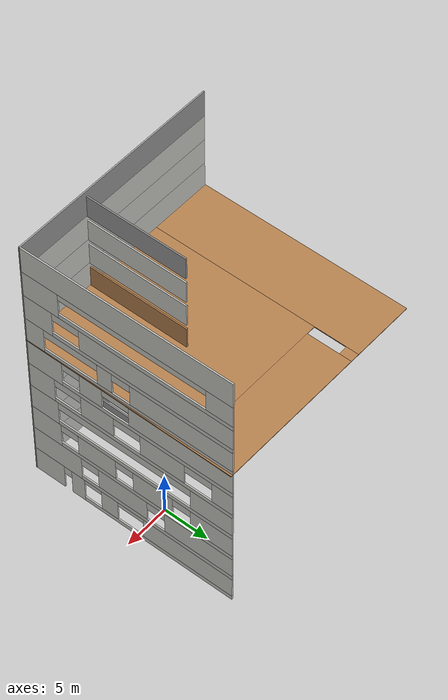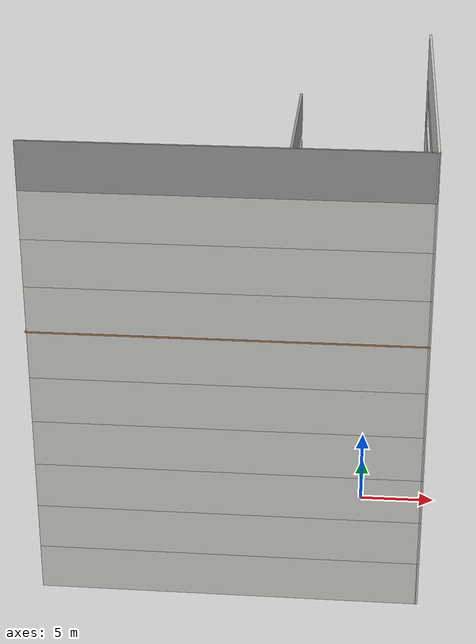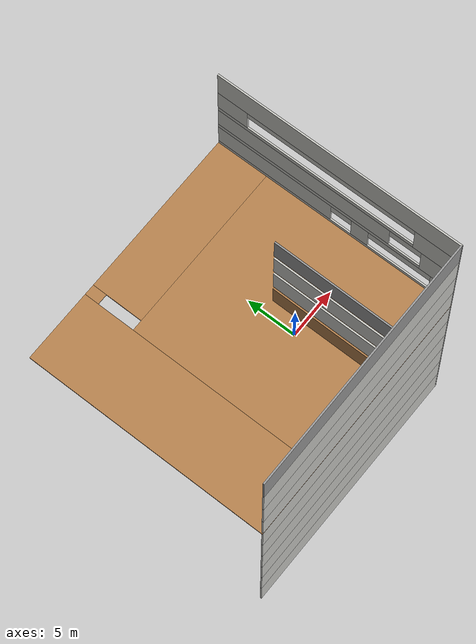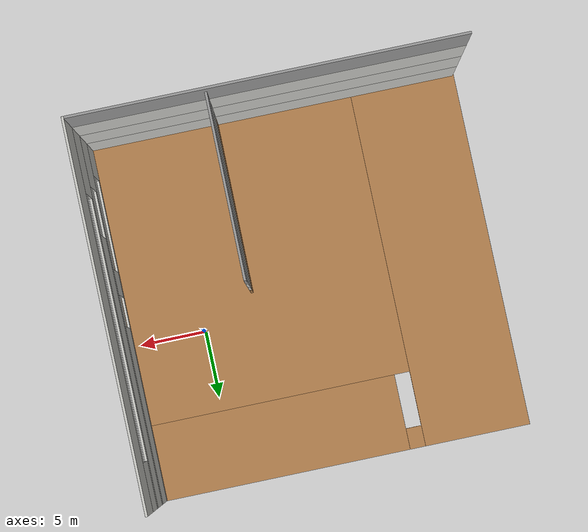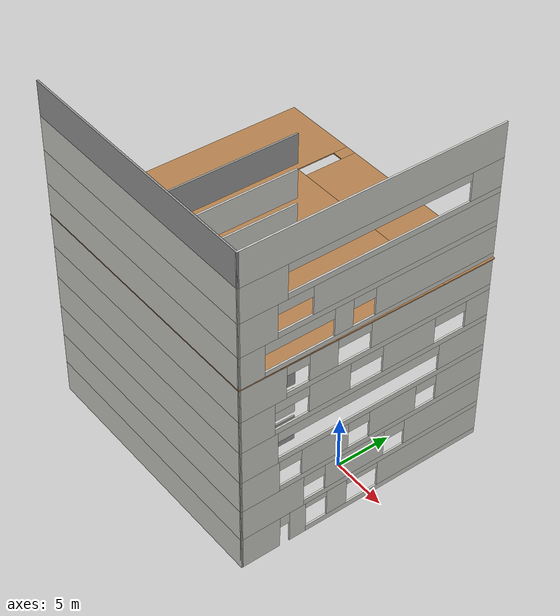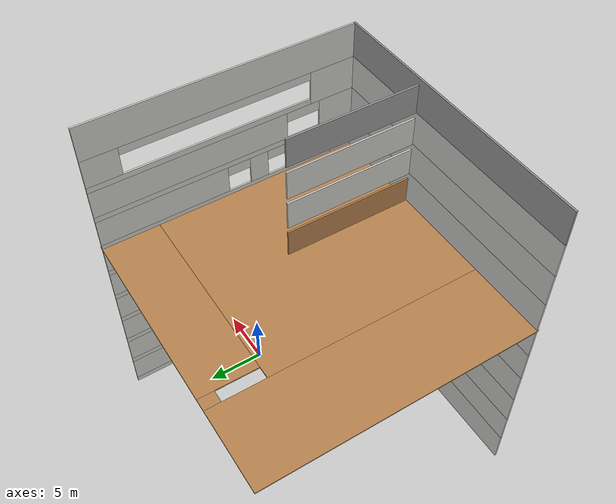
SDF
<sdf version="1.7">
 <model name="high_building">
  <pose>-8.08785 -0.655 0 0 -0 0</pose>
  <link name="Floor_9">
   <pose>0.009156 -0 18 0 -0 0</pose>
   <visual name="Floor_9_Visual_0">
    <pose>-8.52771 0 0.05 0 -0 0</pose>
    <geometry><box><size>6.77119 23.0012 0.1</size></box></geometry>
    <material>
     <script><uri>file://media/materials/scripts/gazebo.material</uri><name>Gazebo/Wood</name></script>
     <ambient>1 1 1 1</ambient>
    </material>
    <meta><layer>6</layer></meta>
   </visual>
   <collision name="Floor_9_Collision_0">
    <geometry><box><size>6.77119 23.0012 0.1</size></box></geometry>
    <pose>-8.52771 0 0.05 0 -0 0</pose>
   </collision>
   <visual name="Floor_9_Visual_1">
    <pose>3.38559 -2.41917 0.05 0 -0 0</pose>
    <geometry><box><size>17.0554 18.1629 0.1</size></box></geometry>
    <material>
     <script><uri>file://media/materials/scripts/gazebo.material</uri><name>Gazebo/Wood</name></script>
     <ambient>1 1 1 1</ambient>
    </material>
    <meta><layer>6</layer></meta>
   </visual>
   <collision name="Floor_9_Collision_1">
    <geometry><box><size>17.0554 18.1629 0.1</size></box></geometry>
    <pose>3.38559 -2.41917 0.05 0 -0 0</pose>
   </collision>
   <visual name="Floor_9_Visual_2">
    <pose>3.88559 9.08145 0.05 0 -0 0</pose>
    <geometry><box><size>16.0554 4.83833 0.1</size></box></geometry>
    <material>
     <script><uri>file://media/materials/scripts/gazebo.material</uri><name>Gazebo/Wood</name></script>
     <ambient>1 1 1 1</ambient>
    </material>
    <meta><layer>6</layer></meta>
   </visual>
   <collision name="Floor_9_Collision_2">
    <geometry><box><size>16.0554 4.83833 0.1</size></box></geometry>
    <pose>3.88559 9.08145 0.05 0 -0 0</pose>
   </collision>
   <visual name="Floor_9_Visual_3">
    <pose>-4.64212 10.8314 0.05 0 -0 0</pose>
    <geometry><box><size>1 1.33833 0.1</size></box></geometry>
    <material>
     <script><uri>file://media/materials/scripts/gazebo.material</uri><name>Gazebo/Wood</name></script>
     <ambient>1 1 1 1</ambient>
    </material>
    <meta><layer>6</layer></meta>
   </visual>
   <collision name="Floor_9_Collision_3">
    <geometry><box><size>1 1.33833 0.1</size></box></geometry>
    <pose>-4.64212 10.8314 0.05 0 -0 0</pose>
   </collision>
  </link>
  <link name="Wall_10">
   <pose>11.7533 -0 0 0 -0 1.57898</pose>
   <visual name="Wall_10_Visual_0">
    <pose>-9.72917 0 1.5 0 -0 0</pose>
    <geometry><box><size>3.54198 0.15 3</size></box></geometry>
    <material>
     <script><uri>file://media/materials/scripts/gazebo.material</uri><name>Gazebo/CeilingTiled</name></script>
     <ambient>1 1 1 1</ambient>
    </material>
    <meta><layer>0</layer></meta>
   </visual>
   <collision name="Wall_10_Collision_0">
    <geometry><box><size>3.54198 0.15 3</size></box></geometry>
    <pose>-9.72917 0 1.5 0 -0 0</pose>
   </collision>
   <visual name="Wall_10_Visual_1">
    <pose>-6.29994 0 1.5 0 -0 0</pose>
    <geometry><box><size>1.5165 0.15 3</size></box></geometry>
    <material>
     <script><uri>file://media/materials/scripts/gazebo.material</uri><name>Gazebo/CeilingTiled</name></script>
     <ambient>1 1 1 1</ambient>
    </material>
    <meta><layer>0</layer></meta>
   </visual>
   <collision name="Wall_10_Collision_1">
    <geometry><box><size>1.5165 0.15 3</size></box></geometry>
    <pose>-6.29994 0 1.5 0 -0 0</pose>
   </collision>
   <visual name="Wall_10_Visual_2">
    <pose>2.97924 0 0.25 0 -0 0</pose>
    <geometry><box><size>17.0419 0.15 0.5</size></box></geometry>
    <material>
     <script><uri>file://media/materials/scripts/gazebo.material</uri><name>Gazebo/CeilingTiled</name></script>
     <ambient>1 1 1 1</ambient>
    </material>
    <meta><layer>0</layer></meta>
   </visual>
   <collision name="Wall_10_Collision_2">
    <geometry><box><size>17.0419 0.15 0.5</size></box></geometry>
    <pose>2.97924 0 0.25 0 -0 0</pose>
   </collision>
   <visual name="Wall_10_Visual_3">
    <pose>-2.58823 0 1.75 0 -0 0</pose>
    <geometry><box><size>1.90692 0.15 2.5</size></box></geometry>
    <material>
     <script><uri>file://media/materials/scripts/gazebo.material</uri><name>Gazebo/CeilingTiled</name></script>
     <ambient>1 1 1 1</ambient>
    </material>
    <meta><layer>0</layer></meta>
   </visual>
   <collision name="Wall_10_Collision_3">
    <geometry><box><size>1.90692 0.15 2.5</size></box></geometry>
    <pose>-2.58823 0 1.75 0 -0 0</pose>
   </collision>
   <visual name="Wall_10_Visual_4">
    <pose>6.4327 0 1.75 0 -0 0</pose>
    <geometry><box><size>10.1349 0.15 2.5</size></box></geometry>
    <material>
     <script><uri>file://media/materials/scripts/gazebo.material</uri><name>Gazebo/CeilingTiled</name></script>
     <ambient>1 1 1 1</ambient>
    </material>
    <meta><layer>0</layer></meta>
   </visual>
   <collision name="Wall_10_Collision_4">
    <geometry><box><size>10.1349 0.15 2.5</size></box></geometry>
    <pose>6.4327 0 1.75 0 -0 0</pose>
   </collision>
   <visual name="Wall_10_Visual_5">
    <pose>-7.50819 0 2.5 0 -0 0</pose>
    <geometry><box><size>0.9 0.15 1</size></box></geometry>
    <material>
     <script><uri>file://media/materials/scripts/gazebo.material</uri><name>Gazebo/CeilingTiled</name></script>
     <ambient>1 1 1 1</ambient>
    </material>
    <meta><layer>0</layer></meta>
   </visual>
   <collision name="Wall_10_Collision_5">
    <geometry><box><size>0.9 0.15 1</size></box></geometry>
    <pose>-7.50819 0 2.5 0 -0 0</pose>
   </collision>
   <visual name="Wall_10_Visual_6">
    <pose>-4.54169 0 2.75 0 -0 0</pose>
    <geometry><box><size>2 0.15 0.5</size></box></geometry>
    <material>
     <script><uri>file://media/materials/scripts/gazebo.material</uri><name>Gazebo/CeilingTiled</name></script>
     <ambient>1 1 1 1</ambient>
    </material>
    <meta><layer>0</layer></meta>
   </visual>
   <collision name="Wall_10_Collision_6">
    <geometry><box><size>2 0.15 0.5</size></box></geometry>
    <pose>-4.54169 0 2.75 0 -0 0</pose>
   </collision>
   <visual name="Wall_10_Visual_7">
    <pose>-0.134768 0 2.75 0 -0 0</pose>
    <geometry><box><size>3 0.15 0.5</size></box></geometry>
    <material>
     <script><uri>file://media/materials/scripts/gazebo.material</uri><name>Gazebo/CeilingTiled</name></script>
     <ambient>1 1 1 1</ambient>
    </material>
    <meta><layer>0</layer></meta>
   </visual>
   <collision name="Wall_10_Collision_7">
    <geometry><box><size>3 0.15 0.5</size></box></geometry>
    <pose>-0.134768 0 2.75 0 -0 0</pose>
   </collision>
  </link>
  <link name="Wall_102">
   <collision name="Wall_102_Collision">
    <geometry><box><size>23.75 0.15 3</size></box></geometry>
    <pose>0 0 1.5 0 -0 0</pose>
   </collision>
   <visual name="Wall_102_Visual">
    <pose>0 0 1.5 0 -0 0</pose>
    <geometry><box><size>23.75 0.15 3</size></box></geometry>
    <material>
     <script><uri>file://media/materials/scripts/gazebo.material</uri><name>Gazebo/Grey</name></script>
     <ambient>1 1 1 1</ambient>
    </material>
    <meta><layer>9</layer></meta>
   </visual>
   <pose>0.046851 -11.425 27 0 -0 0</pose>
  </link>
  <link name="Wall_103">
   <collision name="Wall_103_Collision">
    <geometry><box><size>23.0008 0.15 3</size></box></geometry>
    <pose>0 0 1.5 0 -0 0</pose>
   </collision>
   <visual name="Wall_103_Visual">
    <pose>0 0 1.5 0 -0 0</pose>
    <geometry><box><size>23.0008 0.15 3</size></box></geometry>
    <material>
     <script><uri>file://media/materials/scripts/gazebo.material</uri><name>Gazebo/CeilingTiled</name></script>
     <ambient>1 1 1 1</ambient>
    </material>
    <meta><layer>9</layer></meta>
   </visual>
   <pose>11.7533 -0 27 0 -0 1.57898</pose>
  </link>
  <link name="Wall_106">
   <collision name="Wall_106_Collision">
    <geometry><box><size>11 0.15 2.5</size></box></geometry>
    <pose>0 0 1.25 0 -0 0</pose>
   </collision>
   <visual name="Wall_106_Visual">
    <pose>0 0 1.25 0 -0 0</pose>
    <geometry><box><size>11 0.15 2.5</size></box></geometry>
    <material>
     <script><uri>file://media/materials/scripts/gazebo.material</uri><name>Gazebo/Grey</name></script>
     <ambient>1 1 1 1</ambient>
    </material>
    <meta><layer>9</layer></meta>
   </visual>
   <pose>3.63788 -5.79491 27 0 -0 1.5708</pose>
  </link>
  <link name="Wall_14">
   <collision name="Wall_14_Collision">
    <geometry><box><size>11 0.15 2.5</size></box></geometry>
    <pose>0 0 1.25 0 -0 0</pose>
   </collision>
   <visual name="Wall_14_Visual">
    <pose>0 0 1.25 0 -0 0</pose>
    <geometry><box><size>11 0.15 2.5</size></box></geometry>
    <material>
     <script><uri>file://media/materials/scripts/gazebo.material</uri><name>Gazebo/Grey</name></script>
     <ambient>1 1 1 1</ambient>
    </material>
    <meta><layer>0</layer></meta>
   </visual>
   <pose>3.63788 -5.79491 0 0 -0 1.5708</pose>
  </link>
  <link name="Wall_18">
   <collision name="Wall_18_Collision">
    <geometry><box><size>23.75 0.15 3</size></box></geometry>
    <pose>0 0 1.5 0 -0 0</pose>
   </collision>
   <visual name="Wall_18_Visual">
    <pose>0 0 1.5 0 -0 0</pose>
    <geometry><box><size>23.75 0.15 3</size></box></geometry>
    <material>
     <script><uri>file://media/materials/scripts/gazebo.material</uri><name>Gazebo/CeilingTiled</name></script>
     <ambient>1 1 1 1</ambient>
    </material>
    <meta><layer>1</layer></meta>
   </visual>
   <pose>0.046851 -11.425 3 0 -0 0</pose>
  </link>
  <link name="Wall_19">
   <pose>11.7533 -0 3 0 -0 1.57898</pose>
   <visual name="Wall_19_Visual_0">
    <pose>-8.63673 0 1.5 0 -0 0</pose>
    <geometry><box><size>5.72731 0.15 3</size></box></geometry>
    <material>
     <script><uri>file://media/materials/scripts/gazebo.material</uri><name>Gazebo/CeilingTiled</name></script>
     <ambient>1 1 1 1</ambient>
    </material>
    <meta><layer>1</layer></meta>
   </visual>
   <collision name="Wall_19_Collision_0">
    <geometry><box><size>5.72731 0.15 3</size></box></geometry>
    <pose>-8.63673 0 1.5 0 -0 0</pose>
   </collision>
   <visual name="Wall_19_Visual_1">
    <pose>2.86365 0 0.25 0 -0 0</pose>
    <geometry><box><size>17.2735 0.15 0.5</size></box></geometry>
    <material>
     <script><uri>file://media/materials/scripts/gazebo.material</uri><name>Gazebo/CeilingTiled</name></script>
     <ambient>1 1 1 1</ambient>
    </material>
    <meta><layer>1</layer></meta>
   </visual>
   <collision name="Wall_19_Collision_1">
    <geometry><box><size>17.2735 0.15 0.5</size></box></geometry>
    <pose>2.86365 0 0.25 0 -0 0</pose>
   </collision>
   <visual name="Wall_19_Visual_2">
    <pose>-0.958433 0 1.75 0 -0 0</pose>
    <geometry><box><size>5.62929 0.15 2.5</size></box></geometry>
    <material>
     <script><uri>file://media/materials/scripts/gazebo.material</uri><name>Gazebo/CeilingTiled</name></script>
     <ambient>1 1 1 1</ambient>
    </material>
    <meta><layer>1</layer></meta>
   </visual>
   <collision name="Wall_19_Collision_2">
    <geometry><box><size>5.62929 0.15 2.5</size></box></geometry>
    <pose>-0.958433 0 1.75 0 -0 0</pose>
   </collision>
   <visual name="Wall_19_Visual_3">
    <pose>7.6783 0 1.75 0 -0 0</pose>
    <geometry><box><size>7.64417 0.15 2.5</size></box></geometry>
    <material>
     <script><uri>file://media/materials/scripts/gazebo.material</uri><name>Gazebo/CeilingTiled</name></script>
     <ambient>1 1 1 1</ambient>
    </material>
    <meta><layer>1</layer></meta>
   </visual>
   <collision name="Wall_19_Collision_3">
    <geometry><box><size>7.64417 0.15 2.5</size></box></geometry>
    <pose>7.6783 0 1.75 0 -0 0</pose>
   </collision>
   <visual name="Wall_19_Visual_4">
    <pose>-4.77308 0 2.5 0 -0 0</pose>
    <geometry><box><size>2 0.15 1</size></box></geometry>
    <material>
     <script><uri>file://media/materials/scripts/gazebo.material</uri><name>Gazebo/CeilingTiled</name></script>
     <ambient>1 1 1 1</ambient>
    </material>
    <meta><layer>1</layer></meta>
   </visual>
   <collision name="Wall_19_Collision_4">
    <geometry><box><size>2 0.15 1</size></box></geometry>
    <pose>-4.77308 0 2.5 0 -0 0</pose>
   </collision>
   <visual name="Wall_19_Visual_5">
    <pose>2.85621 0 2.5 0 -0 0</pose>
    <geometry><box><size>2 0.15 1</size></box></geometry>
    <material>
     <script><uri>file://media/materials/scripts/gazebo.material</uri><name>Gazebo/CeilingTiled</name></script>
     <ambient>1 1 1 1</ambient>
    </material>
    <meta><layer>1</layer></meta>
   </visual>
   <collision name="Wall_19_Collision_5">
    <geometry><box><size>2 0.15 1</size></box></geometry>
    <pose>2.85621 0 2.5 0 -0 0</pose>
   </collision>
  </link>
  <link name="Wall_22">
   <collision name="Wall_22_Collision">
    <geometry><box><size>11 0.15 2.5</size></box></geometry>
    <pose>0 0 1.25 0 -0 0</pose>
   </collision>
   <visual name="Wall_22_Visual">
    <pose>0 0 1.25 0 -0 0</pose>
    <geometry><box><size>11 0.15 2.5</size></box></geometry>
    <material>
     <script><uri>file://media/materials/scripts/gazebo.material</uri><name>Gazebo/CeilingTiled</name></script>
     <ambient>1 1 1 1</ambient>
    </material>
    <meta><layer>1</layer></meta>
   </visual>
   <pose>3.63788 -5.79491 3 0 -0 1.5708</pose>
  </link>
  <link name="Wall_25">
   <collision name="Wall_25_Collision">
    <geometry><box><size>23.75 0.15 3</size></box></geometry>
    <pose>0 0 1.5 0 -0 0</pose>
   </collision>
   <visual name="Wall_25_Visual">
    <pose>0 0 1.5 0 -0 0</pose>
    <geometry><box><size>23.75 0.15 3</size></box></geometry>
    <material>
     <script><uri>file://media/materials/scripts/gazebo.material</uri><name>Gazebo/CeilingTiled</name></script>
     <ambient>1 1 1 1</ambient>
    </material>
    <meta><layer>2</layer></meta>
   </visual>
   <pose>0.046851 -11.425 6 0 -0 0</pose>
  </link>
  <link name="Wall_26">
   <pose>11.7533 -0 6 0 -0 1.57898</pose>
   <visual name="Wall_26_Visual_0">
    <pose>-9.75288 0 1.5 0 -0 0</pose>
    <geometry><box><size>3.49499 0.15 3</size></box></geometry>
    <material>
     <script><uri>file://media/materials/scripts/gazebo.material</uri><name>Gazebo/CeilingTiled</name></script>
     <ambient>1 1 1 1</ambient>
    </material>
    <meta><layer>2</layer></meta>
   </visual>
   <collision name="Wall_26_Collision_0">
    <geometry><box><size>3.49499 0.15 3</size></box></geometry>
    <pose>-9.75288 0 1.5 0 -0 0</pose>
   </collision>
   <visual name="Wall_26_Visual_1">
    <pose>1.7475 0 0.25 0 -0 0</pose>
    <geometry><box><size>19.5058 0.15 0.5</size></box></geometry>
    <material>
     <script><uri>file://media/materials/scripts/gazebo.material</uri><name>Gazebo/CeilingTiled</name></script>
     <ambient>1 1 1 1</ambient>
    </material>
    <meta><layer>2</layer></meta>
   </visual>
   <collision name="Wall_26_Collision_1">
    <geometry><box><size>19.5058 0.15 0.5</size></box></geometry>
    <pose>1.7475 0 0.25 0 -0 0</pose>
   </collision>
   <visual name="Wall_26_Visual_2">
    <pose>-3.84168 0 1.75 0 -0 0</pose>
    <geometry><box><size>4.32742 0.15 2.5</size></box></geometry>
    <material>
     <script><uri>file://media/materials/scripts/gazebo.material</uri><name>Gazebo/CeilingTiled</name></script>
     <ambient>1 1 1 1</ambient>
    </material>
    <meta><layer>2</layer></meta>
   </visual>
   <collision name="Wall_26_Collision_2">
    <geometry><box><size>4.32742 0.15 2.5</size></box></geometry>
    <pose>-3.84168 0 1.75 0 -0 0</pose>
   </collision>
   <visual name="Wall_26_Visual_3">
    <pose>2.56473 0 1.75 0 -0 0</pose>
    <geometry><box><size>4.48539 0.15 2.5</size></box></geometry>
    <material>
     <script><uri>file://media/materials/scripts/gazebo.material</uri><name>Gazebo/CeilingTiled</name></script>
     <ambient>1 1 1 1</ambient>
    </material>
    <meta><layer>2</layer></meta>
   </visual>
   <collision name="Wall_26_Collision_3">
    <geometry><box><size>4.48539 0.15 2.5</size></box></geometry>
    <pose>2.56473 0 1.75 0 -0 0</pose>
   </collision>
   <visual name="Wall_26_Visual_4">
    <pose>9.1539 0 1.75 0 -0 0</pose>
    <geometry><box><size>4.69296 0.15 2.5</size></box></geometry>
    <material>
     <script><uri>file://media/materials/scripts/gazebo.material</uri><name>Gazebo/CeilingTiled</name></script>
     <ambient>1 1 1 1</ambient>
    </material>
    <meta><layer>2</layer></meta>
   </visual>
   <collision name="Wall_26_Collision_4">
    <geometry><box><size>4.69296 0.15 2.5</size></box></geometry>
    <pose>9.1539 0 1.75 0 -0 0</pose>
   </collision>
   <visual name="Wall_26_Visual_5">
    <pose>-7.00539 0 2.55 0 -0 0</pose>
    <geometry><box><size>2 0.15 0.9</size></box></geometry>
    <material>
     <script><uri>file://media/materials/scripts/gazebo.material</uri><name>Gazebo/CeilingTiled</name></script>
     <ambient>1 1 1 1</ambient>
    </material>
    <meta><layer>2</layer></meta>
   </visual>
   <collision name="Wall_26_Collision_5">
    <geometry><box><size>2 0.15 0.9</size></box></geometry>
    <pose>-7.00539 0 2.55 0 -0 0</pose>
   </collision>
   <visual name="Wall_26_Visual_6">
    <pose>-0.677966 0 2.55 0 -0 0</pose>
    <geometry><box><size>2 0.15 0.9</size></box></geometry>
    <material>
     <script><uri>file://media/materials/scripts/gazebo.material</uri><name>Gazebo/CeilingTiled</name></script>
     <ambient>1 1 1 1</ambient>
    </material>
    <meta><layer>2</layer></meta>
   </visual>
   <collision name="Wall_26_Collision_6">
    <geometry><box><size>2 0.15 0.9</size></box></geometry>
    <pose>-0.677966 0 2.55 0 -0 0</pose>
   </collision>
   <visual name="Wall_26_Visual_7">
    <pose>5.80742 0 2.55 0 -0 0</pose>
    <geometry><box><size>2 0.15 0.9</size></box></geometry>
    <material>
     <script><uri>file://media/materials/scripts/gazebo.material</uri><name>Gazebo/CeilingTiled</name></script>
     <ambient>1 1 1 1</ambient>
    </material>
    <meta><layer>2</layer></meta>
   </visual>
   <collision name="Wall_26_Collision_7">
    <geometry><box><size>2 0.15 0.9</size></box></geometry>
    <pose>5.80742 0 2.55 0 -0 0</pose>
   </collision>
  </link>
  <link name="Wall_29">
   <collision name="Wall_29_Collision">
    <geometry><box><size>11 0.15 2.5</size></box></geometry>
    <pose>0 0 1.25 0 -0 0</pose>
   </collision>
   <visual name="Wall_29_Visual">
    <pose>0 0 1.25 0 -0 0</pose>
    <geometry><box><size>11 0.15 2.5</size></box></geometry>
    <material>
     <script><uri>file://media/materials/scripts/gazebo.material</uri><name>Gazebo/Grey</name></script>
     <ambient>1 1 1 1</ambient>
    </material>
    <meta><layer>2</layer></meta>
   </visual>
   <pose>3.63788 -5.79491 6 0 -0 1.5708</pose>
  </link>
  <link name="Wall_60">
   <collision name="Wall_60_Collision">
    <geometry><box><size>23.75 0.15 3</size></box></geometry>
    <pose>0 0 1.5 0 -0 0</pose>
   </collision>
   <visual name="Wall_60_Visual">
    <pose>0 0 1.5 0 -0 0</pose>
    <geometry><box><size>23.75 0.15 3</size></box></geometry>
    <material>
     <script><uri>file://media/materials/scripts/gazebo.material</uri><name>Gazebo/CeilingTiled</name></script>
     <ambient>1 1 1 1</ambient>
    </material>
    <meta><layer>3</layer></meta>
   </visual>
   <pose>0.046851 -11.425 9 0 -0 0</pose>
  </link>
  <link name="Wall_61">
   <pose>11.7533 -0 9 0 -0 1.57898</pose>
   <visual name="Wall_61_Visual_0">
    <pose>-9.83116 0 1.5 0 -0 0</pose>
    <geometry><box><size>3.33845 0.15 3</size></box></geometry>
    <material>
     <script><uri>file://media/materials/scripts/gazebo.material</uri><name>Gazebo/CeilingTiled</name></script>
     <ambient>1 1 1 1</ambient>
    </material>
    <meta><layer>3</layer></meta>
   </visual>
   <collision name="Wall_61_Collision_0">
    <geometry><box><size>3.33845 0.15 3</size></box></geometry>
    <pose>-9.83116 0 1.5 0 -0 0</pose>
   </collision>
   <visual name="Wall_61_Visual_1">
    <pose>1.66922 0 0.25 0 -0 0</pose>
    <geometry><box><size>19.6623 0.15 0.5</size></box></geometry>
    <material>
     <script><uri>file://media/materials/scripts/gazebo.material</uri><name>Gazebo/CeilingTiled</name></script>
     <ambient>1 1 1 1</ambient>
    </material>
    <meta><layer>3</layer></meta>
   </visual>
   <collision name="Wall_61_Collision_1">
    <geometry><box><size>19.6623 0.15 0.5</size></box></geometry>
    <pose>1.66922 0 0.25 0 -0 0</pose>
   </collision>
   <visual name="Wall_61_Visual_2">
    <pose>9.16922 0 1.75 0 -0 0</pose>
    <geometry><box><size>4.66232 0.15 2.5</size></box></geometry>
    <material>
     <script><uri>file://media/materials/scripts/gazebo.material</uri><name>Gazebo/CeilingTiled</name></script>
     <ambient>1 1 1 1</ambient>
    </material>
    <meta><layer>3</layer></meta>
   </visual>
   <collision name="Wall_61_Collision_2">
    <geometry><box><size>4.66232 0.15 2.5</size></box></geometry>
    <pose>9.16922 0 1.75 0 -0 0</pose>
   </collision>
   <visual name="Wall_61_Visual_3">
    <pose>-0.661934 0 2.55 0 -0 0</pose>
    <geometry><box><size>15 0.15 0.9</size></box></geometry>
    <material>
     <script><uri>file://media/materials/scripts/gazebo.material</uri><name>Gazebo/CeilingTiled</name></script>
     <ambient>1 1 1 1</ambient>
    </material>
    <meta><layer>3</layer></meta>
   </visual>
   <collision name="Wall_61_Collision_3">
    <geometry><box><size>15 0.15 0.9</size></box></geometry>
    <pose>-0.661934 0 2.55 0 -0 0</pose>
   </collision>
  </link>
  <link name="Wall_64">
   <collision name="Wall_64_Collision">
    <geometry><box><size>11 0.15 2.5</size></box></geometry>
    <pose>0 0 1.25 0 -0 0</pose>
   </collision>
   <visual name="Wall_64_Visual">
    <pose>0 0 1.25 0 -0 0</pose>
    <geometry><box><size>11 0.15 2.5</size></box></geometry>
    <material>
     <script><uri>file://media/materials/scripts/gazebo.material</uri><name>Gazebo/Grey</name></script>
     <ambient>1 1 1 1</ambient>
    </material>
    <meta><layer>3</layer></meta>
   </visual>
   <pose>3.63788 -5.79491 9 0 -0 1.5708</pose>
  </link>
  <link name="Wall_67">
   <collision name="Wall_67_Collision">
    <geometry><box><size>23.75 0.15 3</size></box></geometry>
    <pose>0 0 1.5 0 -0 0</pose>
   </collision>
   <visual name="Wall_67_Visual">
    <pose>0 0 1.5 0 -0 0</pose>
    <geometry><box><size>23.75 0.15 3</size></box></geometry>
    <material>
     <script><uri>file://media/materials/scripts/gazebo.material</uri><name>Gazebo/CeilingTiled</name></script>
     <ambient>1 1 1 1</ambient>
    </material>
    <meta><layer>4</layer></meta>
   </visual>
   <pose>0.046851 -11.425 12 0 -0 0</pose>
  </link>
  <link name="Wall_68">
   <pose>11.7533 -0 12 0 -0 1.57898</pose>
   <visual name="Wall_68_Visual_0">
    <pose>-9.9631 0 1.5 0 -0 0</pose>
    <geometry><box><size>3.07456 0.15 3</size></box></geometry>
    <material>
     <script><uri>file://media/materials/scripts/gazebo.material</uri><name>Gazebo/CeilingTiled</name></script>
     <ambient>1 1 1 1</ambient>
    </material>
    <meta><layer>4</layer></meta>
   </visual>
   <collision name="Wall_68_Collision_0">
    <geometry><box><size>3.07456 0.15 3</size></box></geometry>
    <pose>-9.9631 0 1.5 0 -0 0</pose>
   </collision>
   <visual name="Wall_68_Visual_1">
    <pose>1.53728 0 0.25 0 -0 0</pose>
    <geometry><box><size>19.9262 0.15 0.5</size></box></geometry>
    <material>
     <script><uri>file://media/materials/scripts/gazebo.material</uri><name>Gazebo/CeilingTiled</name></script>
     <ambient>1 1 1 1</ambient>
    </material>
    <meta><layer>4</layer></meta>
   </visual>
   <collision name="Wall_68_Collision_1">
    <geometry><box><size>19.9262 0.15 0.5</size></box></geometry>
    <pose>1.53728 0 0.25 0 -0 0</pose>
   </collision>
   <visual name="Wall_68_Visual_2">
    <pose>-3.56622 0 1.75 0 -0 0</pose>
    <geometry><box><size>3.71921 0.15 2.5</size></box></geometry>
    <material>
     <script><uri>file://media/materials/scripts/gazebo.material</uri><name>Gazebo/CeilingTiled</name></script>
     <ambient>1 1 1 1</ambient>
    </material>
    <meta><layer>4</layer></meta>
   </visual>
   <collision name="Wall_68_Collision_2">
    <geometry><box><size>3.71921 0.15 2.5</size></box></geometry>
    <pose>-3.56622 0 1.75 0 -0 0</pose>
   </collision>
   <visual name="Wall_68_Visual_3">
    <pose>3.75393 0 1.75 0 -0 0</pose>
    <geometry><box><size>4.92108 0.15 2.5</size></box></geometry>
    <material>
     <script><uri>file://media/materials/scripts/gazebo.material</uri><name>Gazebo/CeilingTiled</name></script>
     <ambient>1 1 1 1</ambient>
    </material>
    <meta><layer>4</layer></meta>
   </visual>
   <collision name="Wall_68_Collision_3">
    <geometry><box><size>4.92108 0.15 2.5</size></box></geometry>
    <pose>3.75393 0 1.75 0 -0 0</pose>
   </collision>
   <visual name="Wall_68_Visual_4">
    <pose>10.3574 0 1.75 0 -0 0</pose>
    <geometry><box><size>2.28591 0.15 2.5</size></box></geometry>
    <material>
     <script><uri>file://media/materials/scripts/gazebo.material</uri><name>Gazebo/CeilingTiled</name></script>
     <ambient>1 1 1 1</ambient>
    </material>
    <meta><layer>4</layer></meta>
   </visual>
   <collision name="Wall_68_Collision_4">
    <geometry><box><size>2.28591 0.15 2.5</size></box></geometry>
    <pose>10.3574 0 1.75 0 -0 0</pose>
   </collision>
   <visual name="Wall_68_Visual_5">
    <pose>-6.92582 0 2.55 0 -0 0</pose>
    <geometry><box><size>3 0.15 0.9</size></box></geometry>
    <material>
     <script><uri>file://media/materials/scripts/gazebo.material</uri><name>Gazebo/CeilingTiled</name></script>
     <ambient>1 1 1 1</ambient>
    </material>
    <meta><layer>4</layer></meta>
   </visual>
   <collision name="Wall_68_Collision_5">
    <geometry><box><size>3 0.15 0.9</size></box></geometry>
    <pose>-6.92582 0 2.55 0 -0 0</pose>
   </collision>
   <visual name="Wall_68_Visual_6">
    <pose>-0.206616 0 2.55 0 -0 0</pose>
    <geometry><box><size>3 0.15 0.9</size></box></geometry>
    <material>
     <script><uri>file://media/materials/scripts/gazebo.material</uri><name>Gazebo/CeilingTiled</name></script>
     <ambient>1 1 1 1</ambient>
    </material>
    <meta><layer>4</layer></meta>
   </visual>
   <collision name="Wall_68_Collision_6">
    <geometry><box><size>3 0.15 0.9</size></box></geometry>
    <pose>-0.206616 0 2.55 0 -0 0</pose>
   </collision>
   <visual name="Wall_68_Visual_7">
    <pose>7.71447 0 2.55 0 -0 0</pose>
    <geometry><box><size>3 0.15 0.9</size></box></geometry>
    <material>
     <script><uri>file://media/materials/scripts/gazebo.material</uri><name>Gazebo/CeilingTiled</name></script>
     <ambient>1 1 1 1</ambient>
    </material>
    <meta><layer>4</layer></meta>
   </visual>
   <collision name="Wall_68_Collision_7">
    <geometry><box><size>3 0.15 0.9</size></box></geometry>
    <pose>7.71447 0 2.55 0 -0 0</pose>
   </collision>
  </link>
  <link name="Wall_71">
   <collision name="Wall_71_Collision">
    <geometry><box><size>11 0.15 2.5</size></box></geometry>
    <pose>0 0 1.25 0 -0 0</pose>
   </collision>
   <visual name="Wall_71_Visual">
    <pose>0 0 1.25 0 -0 0</pose>
    <geometry><box><size>11 0.15 2.5</size></box></geometry>
    <material>
     <script><uri>file://media/materials/scripts/gazebo.material</uri><name>Gazebo/CeilingTiled</name></script>
     <ambient>1 1 1 1</ambient>
    </material>
    <meta><layer>4</layer></meta>
   </visual>
   <pose>3.63788 -5.79491 12 0 -0 1.5708</pose>
  </link>
  <link name="Wall_74">
   <collision name="Wall_74_Collision">
    <geometry><box><size>23.75 0.15 3</size></box></geometry>
    <pose>0 0 1.5 0 -0 0</pose>
   </collision>
   <visual name="Wall_74_Visual">
    <pose>0 0 1.5 0 -0 0</pose>
    <geometry><box><size>23.75 0.15 3</size></box></geometry>
    <material>
     <script><uri>file://media/materials/scripts/gazebo.material</uri><name>Gazebo/CeilingTiled</name></script>
     <ambient>1 1 1 1</ambient>
    </material>
    <meta><layer>5</layer></meta>
   </visual>
   <pose>0.046851 -11.425 15 0 -0 0</pose>
  </link>
  <link name="Wall_75">
   <pose>11.7533 -0 15 0 -0 1.57898</pose>
   <visual name="Wall_75_Visual_0">
    <pose>-9.46756 0 1.5 0 -0 0</pose>
    <geometry><box><size>4.06565 0.15 3</size></box></geometry>
    <material>
     <script><uri>file://media/materials/scripts/gazebo.material</uri><name>Gazebo/CeilingTiled</name></script>
     <ambient>1 1 1 1</ambient>
    </material>
    <meta><layer>5</layer></meta>
   </visual>
   <collision name="Wall_75_Collision_0">
    <geometry><box><size>4.06565 0.15 3</size></box></geometry>
    <pose>-9.46756 0 1.5 0 -0 0</pose>
   </collision>
   <visual name="Wall_75_Visual_1">
    <pose>2.03282 0 0.25 0 -0 0</pose>
    <geometry><box><size>18.9351 0.15 0.5</size></box></geometry>
    <material>
     <script><uri>file://media/materials/scripts/gazebo.material</uri><name>Gazebo/CeilingTiled</name></script>
     <ambient>1 1 1 1</ambient>
    </material>
    <meta><layer>5</layer></meta>
   </visual>
   <collision name="Wall_75_Collision_1">
    <geometry><box><size>18.9351 0.15 0.5</size></box></geometry>
    <pose>2.03282 0 0.25 0 -0 0</pose>
   </collision>
   <visual name="Wall_75_Visual_2">
    <pose>-4.17416 0 1.75 0 -0 0</pose>
    <geometry><box><size>2.52114 0.15 2.5</size></box></geometry>
    <material>
     <script><uri>file://media/materials/scripts/gazebo.material</uri><name>Gazebo/CeilingTiled</name></script>
     <ambient>1 1 1 1</ambient>
    </material>
    <meta><layer>5</layer></meta>
   </visual>
   <collision name="Wall_75_Collision_2">
    <geometry><box><size>2.52114 0.15 2.5</size></box></geometry>
    <pose>-4.17416 0 1.75 0 -0 0</pose>
   </collision>
   <visual name="Wall_75_Visual_3">
    <pose>5.79339 0 1.75 0 -0 0</pose>
    <geometry><box><size>11.414 0.15 2.5</size></box></geometry>
    <material>
     <script><uri>file://media/materials/scripts/gazebo.material</uri><name>Gazebo/CeilingTiled</name></script>
     <ambient>1 1 1 1</ambient>
    </material>
    <meta><layer>5</layer></meta>
   </visual>
   <collision name="Wall_75_Collision_3">
    <geometry><box><size>11.414 0.15 2.5</size></box></geometry>
    <pose>5.79339 0 1.75 0 -0 0</pose>
   </collision>
   <visual name="Wall_75_Visual_4">
    <pose>-6.43473 0 2.55 0 -0 0</pose>
    <geometry><box><size>2 0.15 0.9</size></box></geometry>
    <material>
     <script><uri>file://media/materials/scripts/gazebo.material</uri><name>Gazebo/CeilingTiled</name></script>
     <ambient>1 1 1 1</ambient>
    </material>
    <meta><layer>5</layer></meta>
   </visual>
   <collision name="Wall_75_Collision_4">
    <geometry><box><size>2 0.15 0.9</size></box></geometry>
    <pose>-6.43473 0 2.55 0 -0 0</pose>
   </collision>
   <visual name="Wall_75_Visual_5">
    <pose>-1.41359 0 2.55 0 -0 0</pose>
    <geometry><box><size>3 0.15 0.9</size></box></geometry>
    <material>
     <script><uri>file://media/materials/scripts/gazebo.material</uri><name>Gazebo/CeilingTiled</name></script>
     <ambient>1 1 1 1</ambient>
    </material>
    <meta><layer>5</layer></meta>
   </visual>
   <collision name="Wall_75_Collision_5">
    <geometry><box><size>3 0.15 0.9</size></box></geometry>
    <pose>-1.41359 0 2.55 0 -0 0</pose>
   </collision>
  </link>
  <link name="Wall_78">
   <collision name="Wall_78_Collision">
    <geometry><box><size>11 0.15 2.5</size></box></geometry>
    <pose>0 0 1.25 0 -0 0</pose>
   </collision>
   <visual name="Wall_78_Visual">
    <pose>0 0 1.25 0 -0 0</pose>
    <geometry><box><size>11 0.15 2.5</size></box></geometry>
    <material>
     <script><uri>file://media/materials/scripts/gazebo.material</uri><name>Gazebo/Bricks</name></script>
     <ambient>1 1 1 1</ambient>
    </material>
    <meta><layer>5</layer></meta>
   </visual>
   <pose>3.63788 -5.79491 15 0 -0 1.5708</pose>
  </link>
  <link name="Wall_81">
   <collision name="Wall_81_Collision">
    <geometry><box><size>23.75 0.15 3</size></box></geometry>
    <pose>0 0 1.5 0 -0 0</pose>
   </collision>
   <visual name="Wall_81_Visual">
    <pose>0 0 1.5 0 -0 0</pose>
    <geometry><box><size>23.75 0.15 3</size></box></geometry>
    <material>
     <script><uri>file://media/materials/scripts/gazebo.material</uri><name>Gazebo/CeilingTiled</name></script>
     <ambient>1 1 1 1</ambient>
    </material>
    <meta><layer>6</layer></meta>
   </visual>
   <pose>0.046851 -11.425 18 0 -0 0</pose>
  </link>
  <link name="Wall_82">
   <pose>11.7533 -0 18 0 -0 1.57898</pose>
   <visual name="Wall_82_Visual_0">
    <pose>-10.4064 0 1.5 0 -0 0</pose>
    <geometry><box><size>2.18793 0.15 3</size></box></geometry>
    <material>
     <script><uri>file://media/materials/scripts/gazebo.material</uri><name>Gazebo/CeilingTiled</name></script>
     <ambient>1 1 1 1</ambient>
    </material>
    <meta><layer>6</layer></meta>
   </visual>
   <collision name="Wall_82_Collision_0">
    <geometry><box><size>2.18793 0.15 3</size></box></geometry>
    <pose>-10.4064 0 1.5 0 -0 0</pose>
   </collision>
   <visual name="Wall_82_Visual_1">
    <pose>1.09397 0 0.25 0 -0 0</pose>
    <geometry><box><size>20.8128 0.15 0.5</size></box></geometry>
    <material>
     <script><uri>file://media/materials/scripts/gazebo.material</uri><name>Gazebo/CeilingTiled</name></script>
     <ambient>1 1 1 1</ambient>
    </material>
    <meta><layer>6</layer></meta>
   </visual>
   <collision name="Wall_82_Collision_1">
    <geometry><box><size>20.8128 0.15 0.5</size></box></geometry>
    <pose>1.09397 0 0.25 0 -0 0</pose>
   </collision>
   <visual name="Wall_82_Visual_2">
    <pose>-2.4957 0 1.75 0 -0 0</pose>
    <geometry><box><size>1.6335 0.15 2.5</size></box></geometry>
    <material>
     <script><uri>file://media/materials/scripts/gazebo.material</uri><name>Gazebo/CeilingTiled</name></script>
     <ambient>1 1 1 1</ambient>
    </material>
    <meta><layer>6</layer></meta>
   </visual>
   <collision name="Wall_82_Collision_2">
    <geometry><box><size>1.6335 0.15 2.5</size></box></geometry>
    <pose>-2.4957 0 1.75 0 -0 0</pose>
   </collision>
   <visual name="Wall_82_Visual_3">
    <pose>5.91071 0 1.75 0 -0 0</pose>
    <geometry><box><size>11.1793 0.15 2.5</size></box></geometry>
    <material>
     <script><uri>file://media/materials/scripts/gazebo.material</uri><name>Gazebo/CeilingTiled</name></script>
     <ambient>1 1 1 1</ambient>
    </material>
    <meta><layer>6</layer></meta>
   </visual>
   <collision name="Wall_82_Collision_3">
    <geometry><box><size>11.1793 0.15 2.5</size></box></geometry>
    <pose>5.91071 0 1.75 0 -0 0</pose>
   </collision>
   <visual name="Wall_82_Visual_4">
    <pose>-6.31245 0 2.55 0 -0 0</pose>
    <geometry><box><size>6 0.15 0.9</size></box></geometry>
    <material>
     <script><uri>file://media/materials/scripts/gazebo.material</uri><name>Gazebo/CeilingTiled</name></script>
     <ambient>1 1 1 1</ambient>
    </material>
    <meta><layer>6</layer></meta>
   </visual>
   <collision name="Wall_82_Collision_4">
    <geometry><box><size>6 0.15 0.9</size></box></geometry>
    <pose>-6.31245 0 2.55 0 -0 0</pose>
   </collision>
   <visual name="Wall_82_Visual_5">
    <pose>-0.678953 0 2.55 0 -0 0</pose>
    <geometry><box><size>2 0.15 0.9</size></box></geometry>
    <material>
     <script><uri>file://media/materials/scripts/gazebo.material</uri><name>Gazebo/CeilingTiled</name></script>
     <ambient>1 1 1 1</ambient>
    </material>
    <meta><layer>6</layer></meta>
   </visual>
   <collision name="Wall_82_Collision_5">
    <geometry><box><size>2 0.15 0.9</size></box></geometry>
    <pose>-0.678953 0 2.55 0 -0 0</pose>
   </collision>
  </link>
  <link name="Wall_85">
   <collision name="Wall_85_Collision">
    <geometry><box><size>11 0.15 2.5</size></box></geometry>
    <pose>0 0 1.25 0 -0 0</pose>
   </collision>
   <visual name="Wall_85_Visual">
    <pose>0 0 1.25 0 -0 0</pose>
    <geometry><box><size>11 0.15 2.5</size></box></geometry>
    <material>
     <script><uri>file://media/materials/scripts/gazebo.material</uri><name>Gazebo/Wood</name></script>
     <ambient>1 1 1 1</ambient>
    </material>
    <meta><layer>6</layer></meta>
   </visual>
   <pose>3.63788 -5.79491 18 0 -0 1.5708</pose>
  </link>
  <link name="Wall_88">
   <collision name="Wall_88_Collision">
    <geometry><box><size>23.75 0.15 3</size></box></geometry>
    <pose>0 0 1.5 0 -0 0</pose>
   </collision>
   <visual name="Wall_88_Visual">
    <pose>0 0 1.5 0 -0 0</pose>
    <geometry><box><size>23.75 0.15 3</size></box></geometry>
    <material>
     <script><uri>file://media/materials/scripts/gazebo.material</uri><name>Gazebo/CeilingTiled</name></script>
     <ambient>1 1 1 1</ambient>
    </material>
    <meta><layer>7</layer></meta>
   </visual>
   <pose>0.046851 -11.425 21 0 -0 0</pose>
  </link>
  <link name="Wall_89">
   <pose>11.7533 -0 21 0 -0 1.57898</pose>
   <visual name="Wall_89_Visual_0">
    <pose>-9.85533 0 1.5 0 -0 0</pose>
    <geometry><box><size>3.29011 0.15 3</size></box></geometry>
    <material>
     <script><uri>file://media/materials/scripts/gazebo.material</uri><name>Gazebo/CeilingTiled</name></script>
     <ambient>1 1 1 1</ambient>
    </material>
    <meta><layer>7</layer></meta>
   </visual>
   <collision name="Wall_89_Collision_0">
    <geometry><box><size>3.29011 0.15 3</size></box></geometry>
    <pose>-9.85533 0 1.5 0 -0 0</pose>
   </collision>
   <visual name="Wall_89_Visual_1">
    <pose>1.64506 0 0.25 0 -0 0</pose>
    <geometry><box><size>19.7107 0.15 0.5</size></box></geometry>
    <material>
     <script><uri>file://media/materials/scripts/gazebo.material</uri><name>Gazebo/CeilingTiled</name></script>
     <ambient>1 1 1 1</ambient>
    </material>
    <meta><layer>7</layer></meta>
   </visual>
   <collision name="Wall_89_Collision_1">
    <geometry><box><size>19.7107 0.15 0.5</size></box></geometry>
    <pose>1.64506 0 0.25 0 -0 0</pose>
   </collision>
   <visual name="Wall_89_Visual_2">
    <pose>3.14506 0 1.75 0 -0 0</pose>
    <geometry><box><size>16.7107 0.15 2.5</size></box></geometry>
    <material>
     <script><uri>file://media/materials/scripts/gazebo.material</uri><name>Gazebo/CeilingTiled</name></script>
     <ambient>1 1 1 1</ambient>
    </material>
    <meta><layer>7</layer></meta>
   </visual>
   <collision name="Wall_89_Collision_2">
    <geometry><box><size>16.7107 0.15 2.5</size></box></geometry>
    <pose>3.14506 0 1.75 0 -0 0</pose>
   </collision>
   <visual name="Wall_89_Visual_3">
    <pose>-6.71027 0 2.55 0 -0 0</pose>
    <geometry><box><size>3 0.15 0.9</size></box></geometry>
    <material>
     <script><uri>file://media/materials/scripts/gazebo.material</uri><name>Gazebo/CeilingTiled</name></script>
     <ambient>1 1 1 1</ambient>
    </material>
    <meta><layer>7</layer></meta>
   </visual>
   <collision name="Wall_89_Collision_3">
    <geometry><box><size>3 0.15 0.9</size></box></geometry>
    <pose>-6.71027 0 2.55 0 -0 0</pose>
   </collision>
  </link>
  <link name="Wall_9">
   <collision name="Wall_9_Collision">
    <geometry><box><size>23.75 0.15 3</size></box></geometry>
    <pose>0 0 1.5 0 -0 0</pose>
   </collision>
   <visual name="Wall_9_Visual">
    <pose>0 0 1.5 0 -0 0</pose>
    <geometry><box><size>23.75 0.15 3</size></box></geometry>
    <material>
     <script><uri>file://media/materials/scripts/gazebo.material</uri><name>Gazebo/CeilingTiled</name></script>
     <ambient>1 1 1 1</ambient>
    </material>
    <meta><layer>0</layer></meta>
   </visual>
   <pose>0.04685 -11.425 0 0 -0 0</pose>
  </link>
  <link name="Wall_92">
   <collision name="Wall_92_Collision">
    <geometry><box><size>11 0.15 2.5</size></box></geometry>
    <pose>0 0 1.25 0 -0 0</pose>
   </collision>
   <visual name="Wall_92_Visual">
    <pose>0 0 1.25 0 -0 0</pose>
    <geometry><box><size>11 0.15 2.5</size></box></geometry>
    <material>
     <script><uri>file://media/materials/scripts/gazebo.material</uri><name>Gazebo/CeilingTiled</name></script>
     <ambient>1 1 1 1</ambient>
    </material>
    <meta><layer>7</layer></meta>
   </visual>
   <pose>3.63788 -5.79491 21 0 -0 1.5708</pose>
  </link>
  <link name="Wall_95">
   <collision name="Wall_95_Collision">
    <geometry><box><size>23.75 0.15 3</size></box></geometry>
    <pose>0 0 1.5 0 -0 0</pose>
   </collision>
   <visual name="Wall_95_Visual">
    <pose>0 0 1.5 0 -0 0</pose>
    <geometry><box><size>23.75 0.15 3</size></box></geometry>
    <material>
     <script><uri>file://media/materials/scripts/gazebo.material</uri><name>Gazebo/CeilingTiled</name></script>
     <ambient>1 1 1 1</ambient>
    </material>
    <meta><layer>8</layer></meta>
   </visual>
   <pose>0.046851 -11.425 24 0 -0 0</pose>
  </link>
  <link name="Wall_96">
   <pose>11.7533 -0 24 0 -0 1.57898</pose>
   <visual name="Wall_96_Visual_0">
    <pose>-9.44523 0 1.5 0 -0 0</pose>
    <geometry><box><size>4.1103 0.15 3</size></box></geometry>
    <material>
     <script><uri>file://media/materials/scripts/gazebo.material</uri><name>Gazebo/CeilingTiled</name></script>
     <ambient>1 1 1 1</ambient>
    </material>
    <meta><layer>8</layer></meta>
   </visual>
   <collision name="Wall_96_Collision_0">
    <geometry><box><size>4.1103 0.15 3</size></box></geometry>
    <pose>-9.44523 0 1.5 0 -0 0</pose>
   </collision>
   <visual name="Wall_96_Visual_1">
    <pose>2.05515 0 0.25 0 -0 0</pose>
    <geometry><box><size>18.8905 0.15 0.5</size></box></geometry>
    <material>
     <script><uri>file://media/materials/scripts/gazebo.material</uri><name>Gazebo/CeilingTiled</name></script>
     <ambient>1 1 1 1</ambient>
    </material>
    <meta><layer>8</layer></meta>
   </visual>
   <collision name="Wall_96_Collision_1">
    <geometry><box><size>18.8905 0.15 0.5</size></box></geometry>
    <pose>2.05515 0 0.25 0 -0 0</pose>
   </collision>
   <visual name="Wall_96_Visual_2">
    <pose>10.0551 0 1.75 0 -0 0</pose>
    <geometry><box><size>2.89047 0.15 2.5</size></box></geometry>
    <material>
     <script><uri>file://media/materials/scripts/gazebo.material</uri><name>Gazebo/CeilingTiled</name></script>
     <ambient>1 1 1 1</ambient>
    </material>
    <meta><layer>8</layer></meta>
   </visual>
   <collision name="Wall_96_Collision_2">
    <geometry><box><size>2.89047 0.15 2.5</size></box></geometry>
    <pose>10.0551 0 1.75 0 -0 0</pose>
   </collision>
   <visual name="Wall_96_Visual_3">
    <pose>0.609914 0 2.65 0 -0 0</pose>
    <geometry><box><size>16 0.15 0.7</size></box></geometry>
    <material>
     <script><uri>file://media/materials/scripts/gazebo.material</uri><name>Gazebo/CeilingTiled</name></script>
     <ambient>1 1 1 1</ambient>
    </material>
    <meta><layer>8</layer></meta>
   </visual>
   <collision name="Wall_96_Collision_3">
    <geometry><box><size>16 0.15 0.7</size></box></geometry>
    <pose>0.609914 0 2.65 0 -0 0</pose>
   </collision>
  </link>
  <link name="Wall_99">
   <collision name="Wall_99_Collision">
    <geometry><box><size>11 0.15 2.5</size></box></geometry>
    <pose>0 0 1.25 0 -0 0</pose>
   </collision>
   <visual name="Wall_99_Visual">
    <pose>0 0 1.25 0 -0 0</pose>
    <geometry><box><size>11 0.15 2.5</size></box></geometry>
    <material>
     <script><uri>file://media/materials/scripts/gazebo.material</uri><name>Gazebo/CeilingTiled</name></script>
     <ambient>1 1 1 1</ambient>
    </material>
    <meta><layer>8</layer></meta>
   </visual>
   <pose>3.63788 -5.79491 24 0 -0 1.5708</pose>
  </link>
  <static>1</static>
 </model>
</sdf>
